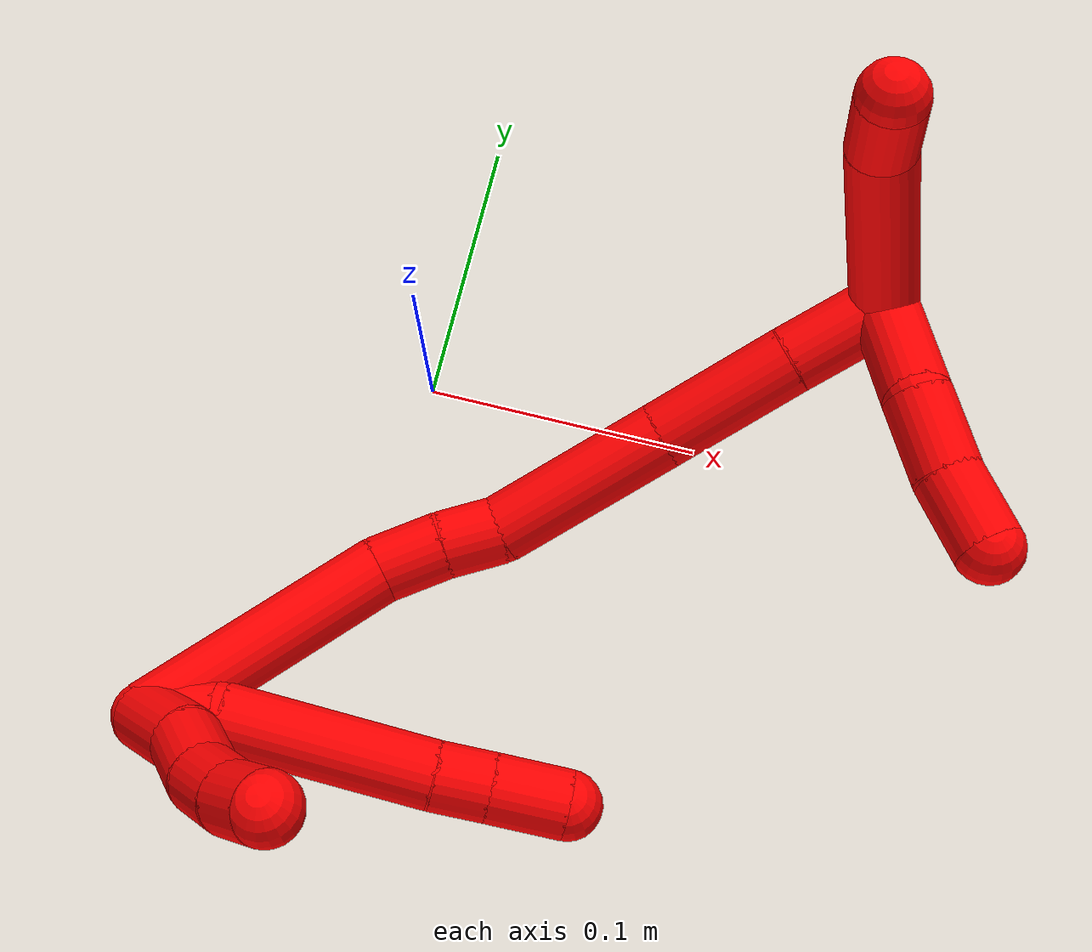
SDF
<sdf version="1.7">
 <world name="default">
  <model name="photoneo_s_sensor">
   <static>1</static>
   <pose>0 0 2 1.57079 1.57079 3.14159</pose>
   <link name="link">
    <inertial><mass>0.1</mass></inertial>
    <sensor name="sensor" type="depth">
     <update_rate>30</update_rate>
     <camera>
      <horizontal_fov>1.22</horizontal_fov>
      <image><width>1920</width><height>1200</height><format>B8G8R8</format></image>
      <clip><near>0.1</near><far>4</far></clip>
      <depth_camera><output>points</output></depth_camera>
     </camera>
     <plugin name="camera_plugin" filename="libgazebo_ros_depth_camera.so">
      <baseline>0.2</baseline>
      <alwaysOn>1</alwaysOn>
      <updateRate>0.0</updateRate>
      <cameraName>camera_ir</cameraName>
      <imageTopicName>/camera/color/image_raw</imageTopicName>
      <cameraInfoTopicName>/camera/color/camera_info</cameraInfoTopicName>
      <depthImageTopicName>/camera/depth/image_raw</depthImageTopicName>
      <depthImageCameraInfoTopicName>/camera/depth/camera_info</depthImageCameraInfoTopicName>
      <pointCloudTopicName>/camera/depth/points</pointCloudTopicName>
      <frameName>fr_optical</frameName>
      <pointCloudCutoff>0.1</pointCloudCutoff>
      <pointCloudCutoffMax>2.0</pointCloudCutoffMax>
      <distortionK1>0</distortionK1>
      <distortionK2>0</distortionK2>
      <distortionK3>0</distortionK3>
      <distortionT1>0</distortionT1>
      <distortionT2>0</distortionT2>
      <CxPrime>0</CxPrime>
      <Cx>0</Cx>
      <Cy>0</Cy>
      <focalLength>0</focalLength>
      <hackBaseline>0</hackBaseline>
     </plugin>
    </sensor>
   </link>
  </model>
  <model name="bin">
   <static>1</static>
   <link name="bottom">
    <collision name="collision-bottom">
     <pose>0 0 -0.01 0 -0 0</pose>
     <geometry><box><size>0.8 0.6 0.02</size></box></geometry>
     <surface>
      <friction><ode><mu>100</mu><mu2>100</mu2></ode></friction>
      <contact><collide_bitmask>65535</collide_bitmask></contact>
     </surface>
    </collision>
   </link>
   <link name="west_wall">
    <collision name="collision-west_wall">
     <pose>-0.41 0 0.1 0 -0 0</pose>
     <geometry><box><size>0.02 0.6 0.2</size></box></geometry>
     <surface>
      <friction><ode><mu>100</mu><mu2>100</mu2></ode></friction>
      <contact><collide_bitmask>65535</collide_bitmask></contact>
     </surface>
    </collision>
   </link>
   <link name="east_wall">
    <collision name="collision-east_wall">
     <pose>0.41 0 0.1 0 -0 0</pose>
     <geometry><box><size>0.02 0.6 0.2</size></box></geometry>
     <surface>
      <friction><ode><mu>100</mu><mu2>100</mu2></ode></friction>
      <contact><collide_bitmask>65535</collide_bitmask></contact>
     </surface>
    </collision>
   </link>
   <link name="south_wall">
    <collision name="collision-south_wall">
     <pose>0 -0.31 0.1 0 -0 0</pose>
     <geometry><box><size>0.8 0.02 0.2</size></box></geometry>
     <surface>
      <friction><ode><mu>100</mu><mu2>100</mu2></ode></friction>
      <contact><collide_bitmask>65535</collide_bitmask></contact>
     </surface>
    </collision>
   </link>
   <link name="north_wall">
    <collision name="collision-north_wall">
     <pose>0 0.31 0.1 0 -0 0</pose>
     <geometry><box><size>0.8 0.02 0.2</size></box></geometry>
     <surface>
      <friction><ode><mu>100</mu><mu2>100</mu2></ode></friction>
      <contact><collide_bitmask>65535</collide_bitmask></contact>
     </surface>
    </collision>
   </link>
  </model>
  <model name="2">
   <static>0</static>
   <link name="2">
    <collision name="collision-cylinder-e_1_2_8">
     <pose>0.012051 0.004486 0.000682 -1.42 1.21067 -1.07317</pose>
     <geometry><cylinder><radius>0.0125</radius><length>0.025755</length></cylinder></geometry>
     <surface>
      <friction><ode><mu>1.16</mu><mu2>1.16</mu2><slip1>0</slip1><slip2>0</slip2></ode></friction>
      <contact><ode><kp>1e+06</kp><kd>1</kd><max_vel>0</max_vel><min_depth>0.001</min_depth></ode></contact>
     </surface>
    </collision>
    <visual name="visual-cylinder-e_1_2_8">
     <pose>0.012051 0.004486 0.000682 -1.42 1.21067 -1.07317</pose>
     <geometry><cylinder><radius>0.0125</radius><length>0.025755</length></cylinder></geometry>
     <material><ambient>1 0 0 1</ambient></material>
    </visual>
    <collision name="collision-cylinder-e_2_8_9">
     <pose>0.060912 0.015792 -0.006415 -2.42184 1.29683 -2.21979</pose>
     <geometry><cylinder><radius>0.0125</radius><length>0.076471</length></cylinder></geometry>
     <surface>
      <friction><ode><mu>1.16</mu><mu2>1.16</mu2><slip1>0</slip1><slip2>0</slip2></ode></friction>
      <contact><ode><kp>1e+06</kp><kd>1</kd><max_vel>0</max_vel><min_depth>0.001</min_depth></ode></contact>
     </surface>
    </collision>
    <visual name="visual-cylinder-e_2_8_9">
     <pose>0.060912 0.015792 -0.006415 -2.42184 1.29683 -2.21979</pose>
     <geometry><cylinder><radius>0.0125</radius><length>0.076471</length></cylinder></geometry>
     <material><ambient>1 0 0 1</ambient></material>
    </visual>
    <collision name="collision-cylinder-e_3_9_10">
     <pose>0.107187 0.025017 -0.016407 -2.31436 1.2383 -2.03748</pose>
     <geometry><cylinder><radius>0.0125</radius><length>0.020027</length></cylinder></geometry>
     <surface>
      <friction><ode><mu>1.16</mu><mu2>1.16</mu2><slip1>0</slip1><slip2>0</slip2></ode></friction>
      <contact><ode><kp>1e+06</kp><kd>1</kd><max_vel>0</max_vel><min_depth>0.001</min_depth></ode></contact>
     </surface>
    </collision>
    <visual name="visual-cylinder-e_3_9_10">
     <pose>0.107187 0.025017 -0.016407 -2.31436 1.2383 -2.03748</pose>
     <geometry><cylinder><radius>0.0125</radius><length>0.020027</length></cylinder></geometry>
     <material><ambient>1 0 0 1</ambient></material>
    </visual>
    <collision name="collision-cylinder-e_4_10_6">
     <pose>0.129926 0.0305 -0.021228 -2.27391 1.27577 -2.02441</pose>
     <geometry><cylinder><radius>0.0125</radius><length>0.027747</length></cylinder></geometry>
     <surface>
      <friction><ode><mu>1.16</mu><mu2>1.16</mu2><slip1>0</slip1><slip2>0</slip2></ode></friction>
      <contact><ode><kp>1e+06</kp><kd>1</kd><max_vel>0</max_vel><min_depth>0.001</min_depth></ode></contact>
     </surface>
    </collision>
    <visual name="visual-cylinder-e_4_10_6">
     <pose>0.129926 0.0305 -0.021228 -2.27391 1.27577 -2.02441</pose>
     <geometry><cylinder><radius>0.0125</radius><length>0.027747</length></cylinder></geometry>
     <material><ambient>1 0 0 1</ambient></material>
    </visual>
    <collision name="collision-cylinder-e_1_2_11">
     <pose>0.012256 -0.00372 0.009479 0.373979 0.877508 0.177103</pose>
     <geometry><cylinder><radius>0.0125</radius><length>0.031869</length></cylinder></geometry>
     <surface>
      <friction><ode><mu>1.16</mu><mu2>1.16</mu2><slip1>0</slip1><slip2>0</slip2></ode></friction>
      <contact><ode><kp>1e+06</kp><kd>1</kd><max_vel>0</max_vel><min_depth>0.001</min_depth></ode></contact>
     </surface>
    </collision>
    <visual name="visual-cylinder-e_1_2_11">
     <pose>0.012256 -0.00372 0.009479 0.373979 0.877508 0.177103</pose>
     <geometry><cylinder><radius>0.0125</radius><length>0.031869</length></cylinder></geometry>
     <material><ambient>1 0 0 1</ambient></material>
    </visual>
    <collision name="collision-cylinder-e_2_11_12">
     <pose>0.033137 -0.013706 0.026289 0.70723 0.729685 0.280127</pose>
     <geometry><cylinder><radius>0.0125</radius><length>0.025874</length></cylinder></geometry>
     <surface>
      <friction><ode><mu>1.16</mu><mu2>1.16</mu2><slip1>0</slip1><slip2>0</slip2></ode></friction>
      <contact><ode><kp>1e+06</kp><kd>1</kd><max_vel>0</max_vel><min_depth>0.001</min_depth></ode></contact>
     </surface>
    </collision>
    <visual name="visual-cylinder-e_2_11_12">
     <pose>0.033137 -0.013706 0.026289 0.70723 0.729685 0.280127</pose>
     <geometry><cylinder><radius>0.0125</radius><length>0.025874</length></cylinder></geometry>
     <material><ambient>1 0 0 1</ambient></material>
    </visual>
    <collision name="collision-cylinder-e_3_12_13">
     <pose>0.049887 -0.022701 0.040401 0.382705 0.838237 0.172186</pose>
     <geometry><cylinder><radius>0.0125</radius><length>0.02186</length></cylinder></geometry>
     <surface>
      <friction><ode><mu>1.16</mu><mu2>1.16</mu2><slip1>0</slip1><slip2>0</slip2></ode></friction>
      <contact><ode><kp>1e+06</kp><kd>1</kd><max_vel>0</max_vel><min_depth>0.001</min_depth></ode></contact>
     </surface>
    </collision>
    <visual name="visual-cylinder-e_3_12_13">
     <pose>0.049887 -0.022701 0.040401 0.382705 0.838237 0.172186</pose>
     <geometry><cylinder><radius>0.0125</radius><length>0.02186</length></cylinder></geometry>
     <material><ambient>1 0 0 1</ambient></material>
    </visual>
    <collision name="collision-cylinder-e_4_13_5">
     <pose>0.065704 -0.026334 0.053818 0.135316 0.854351 0.061671</pose>
     <geometry><cylinder><radius>0.0125</radius><length>0.020396</length></cylinder></geometry>
     <surface>
      <friction><ode><mu>1.16</mu><mu2>1.16</mu2><slip1>0</slip1><slip2>0</slip2></ode></friction>
      <contact><ode><kp>1e+06</kp><kd>1</kd><max_vel>0</max_vel><min_depth>0.001</min_depth></ode></contact>
     </surface>
    </collision>
    <visual name="visual-cylinder-e_4_13_5">
     <pose>0.065704 -0.026334 0.053818 0.135316 0.854351 0.061671</pose>
     <geometry><cylinder><radius>0.0125</radius><length>0.020396</length></cylinder></geometry>
     <material><ambient>1 0 0 1</ambient></material>
    </visual>
    <collision name="collision-cylinder-e_1_2_14">
     <pose>0.024573 0.041038 -0.001605 -1.60989 0.53918 -0.559596</pose>
     <geometry><cylinder><radius>0.0125</radius><length>0.095719</length></cylinder></geometry>
     <surface>
      <friction><ode><mu>1.16</mu><mu2>1.16</mu2><slip1>0</slip1><slip2>0</slip2></ode></friction>
      <contact><ode><kp>1e+06</kp><kd>1</kd><max_vel>0</max_vel><min_depth>0.001</min_depth></ode></contact>
     </surface>
    </collision>
    <visual name="visual-cylinder-e_1_2_14">
     <pose>0.024573 0.041038 -0.001605 -1.60989 0.53918 -0.559596</pose>
     <geometry><cylinder><radius>0.0125</radius><length>0.095719</length></cylinder></geometry>
     <material><ambient>1 0 0 1</ambient></material>
    </visual>
    <collision name="collision-cylinder-e_2_14_15">
     <pose>0.058171 0.090459 -0.001843 -1.40902 0.815795 -0.704053</pose>
     <geometry><cylinder><radius>0.0125</radius><length>0.024785</length></cylinder></geometry>
     <surface>
      <friction><ode><mu>1.16</mu><mu2>1.16</mu2><slip1>0</slip1><slip2>0</slip2></ode></friction>
      <contact><ode><kp>1e+06</kp><kd>1</kd><max_vel>0</max_vel><min_depth>0.001</min_depth></ode></contact>
     </surface>
    </collision>
    <visual name="visual-cylinder-e_2_14_15">
     <pose>0.058171 0.090459 -0.001843 -1.40902 0.815795 -0.704053</pose>
     <geometry><cylinder><radius>0.0125</radius><length>0.024785</length></cylinder></geometry>
     <material><ambient>1 0 0 1</ambient></material>
    </visual>
    <collision name="collision-cylinder-e_3_15_16">
     <pose>0.075534 0.105393 -4e-05 -1.50451 0.903621 -0.852585</pose>
     <geometry><cylinder><radius>0.0125</radius><length>0.021228</length></cylinder></geometry>
     <surface>
      <friction><ode><mu>1.16</mu><mu2>1.16</mu2><slip1>0</slip1><slip2>0</slip2></ode></friction>
      <contact><ode><kp>1e+06</kp><kd>1</kd><max_vel>0</max_vel><min_depth>0.001</min_depth></ode></contact>
     </surface>
    </collision>
    <visual name="visual-cylinder-e_3_15_16">
     <pose>0.075534 0.105393 -4e-05 -1.50451 0.903621 -0.852585</pose>
     <geometry><cylinder><radius>0.0125</radius><length>0.021228</length></cylinder></geometry>
     <material><ambient>1 0 0 1</ambient></material>
    </visual>
    <collision name="collision-cylinder-e_4_16_17">
     <pose>0.105283 0.136313 0.009122 -1.22689 0.691138 -0.496488</pose>
     <geometry><cylinder><radius>0.0125</radius><length>0.067182</length></cylinder></geometry>
     <surface>
      <friction><ode><mu>1.16</mu><mu2>1.16</mu2><slip1>0</slip1><slip2>0</slip2></ode></friction>
      <contact><ode><kp>1e+06</kp><kd>1</kd><max_vel>0</max_vel><min_depth>0.001</min_depth></ode></contact>
     </surface>
    </collision>
    <visual name="visual-cylinder-e_4_16_17">
     <pose>0.105283 0.136313 0.009122 -1.22689 0.691138 -0.496488</pose>
     <geometry><cylinder><radius>0.0125</radius><length>0.067182</length></cylinder></geometry>
     <material><ambient>1 0 0 1</ambient></material>
    </visual>
    <collision name="collision-cylinder-e_5_17_18">
     <pose>0.143991 0.17886 0.026818 -1.1125 0.706381 -0.45062</pose>
     <geometry><cylinder><radius>0.0125</radius><length>0.053296</length></cylinder></geometry>
     <surface>
      <friction><ode><mu>1.16</mu><mu2>1.16</mu2><slip1>0</slip1><slip2>0</slip2></ode></friction>
      <contact><ode><kp>1e+06</kp><kd>1</kd><max_vel>0</max_vel><min_depth>0.001</min_depth></ode></contact>
     </surface>
    </collision>
    <visual name="visual-cylinder-e_5_17_18">
     <pose>0.143991 0.17886 0.026818 -1.1125 0.706381 -0.45062</pose>
     <geometry><cylinder><radius>0.0125</radius><length>0.053296</length></cylinder></geometry>
     <material><ambient>1 0 0 1</ambient></material>
    </visual>
    <collision name="collision-cylinder-e_6_18_1">
     <pose>0.17368 0.210316 0.041002 -1.19647 0.715289 -0.498807</pose>
     <geometry><cylinder><radius>0.0125</radius><length>0.037789</length></cylinder></geometry>
     <surface>
      <friction><ode><mu>1.16</mu><mu2>1.16</mu2><slip1>0</slip1><slip2>0</slip2></ode></friction>
      <contact><ode><kp>1e+06</kp><kd>1</kd><max_vel>0</max_vel><min_depth>0.001</min_depth></ode></contact>
     </surface>
    </collision>
    <visual name="visual-cylinder-e_6_18_1">
     <pose>0.17368 0.210316 0.041002 -1.19647 0.715289 -0.498807</pose>
     <geometry><cylinder><radius>0.0125</radius><length>0.037789</length></cylinder></geometry>
     <material><ambient>1 0 0 1</ambient></material>
    </visual>
    <collision name="collision-cylinder-e_1_1_19">
     <pose>0.197449 0.206383 0.049356 1.3904 0.576638 0.485032</pose>
     <geometry><cylinder><radius>0.0125</radius><length>0.041734</length></cylinder></geometry>
     <surface>
      <friction><ode><mu>1.16</mu><mu2>1.16</mu2><slip1>0</slip1><slip2>0</slip2></ode></friction>
      <contact><ode><kp>1e+06</kp><kd>1</kd><max_vel>0</max_vel><min_depth>0.001</min_depth></ode></contact>
     </surface>
    </collision>
    <visual name="visual-cylinder-e_1_1_19">
     <pose>0.197449 0.206383 0.049356 1.3904 0.576638 0.485032</pose>
     <geometry><cylinder><radius>0.0125</radius><length>0.041734</length></cylinder></geometry>
     <material><ambient>1 0 0 1</ambient></material>
    </visual>
    <collision name="collision-cylinder-e_2_19_20">
     <pose>0.218291 0.177583 0.050404 1.74919 0.676979 0.797279</pose>
     <geometry><cylinder><radius>0.0125</radius><length>0.030221</length></cylinder></geometry>
     <surface>
      <friction><ode><mu>1.16</mu><mu2>1.16</mu2><slip1>0</slip1><slip2>0</slip2></ode></friction>
      <contact><ode><kp>1e+06</kp><kd>1</kd><max_vel>0</max_vel><min_depth>0.001</min_depth></ode></contact>
     </surface>
    </collision>
    <visual name="visual-cylinder-e_2_19_20">
     <pose>0.218291 0.177583 0.050404 1.74919 0.676979 0.797279</pose>
     <geometry><cylinder><radius>0.0125</radius><length>0.030221</length></cylinder></geometry>
     <material><ambient>1 0 0 1</ambient></material>
    </visual>
    <collision name="collision-cylinder-e_3_20_4">
     <pose>0.237932 0.156408 0.047196 1.68691 0.811951 0.899755</pose>
     <geometry><cylinder><radius>0.0125</radius><length>0.028046</length></cylinder></geometry>
     <surface>
      <friction><ode><mu>1.16</mu><mu2>1.16</mu2><slip1>0</slip1><slip2>0</slip2></ode></friction>
      <contact><ode><kp>1e+06</kp><kd>1</kd><max_vel>0</max_vel><min_depth>0.001</min_depth></ode></contact>
     </surface>
    </collision>
    <visual name="visual-cylinder-e_3_20_4">
     <pose>0.237932 0.156408 0.047196 1.68691 0.811951 0.899755</pose>
     <geometry><cylinder><radius>0.0125</radius><length>0.028046</length></cylinder></geometry>
     <material><ambient>1 0 0 1</ambient></material>
    </visual>
    <collision name="collision-cylinder-e_1_1_21">
     <pose>0.179953 0.228623 0.082207 -0.138904 -0.16681 0.011631</pose>
     <geometry><cylinder><radius>0.0125</radius><length>0.073703</length></cylinder></geometry>
     <surface>
      <friction><ode><mu>1.16</mu><mu2>1.16</mu2><slip1>0</slip1><slip2>0</slip2></ode></friction>
      <contact><ode><kp>1e+06</kp><kd>1</kd><max_vel>0</max_vel><min_depth>0.001</min_depth></ode></contact>
     </surface>
    </collision>
    <visual name="visual-cylinder-e_1_1_21">
     <pose>0.179953 0.228623 0.082207 -0.138904 -0.16681 0.011631</pose>
     <geometry><cylinder><radius>0.0125</radius><length>0.073703</length></cylinder></geometry>
     <material><ambient>1 0 0 1</ambient></material>
    </visual>
    <collision name="collision-cylinder-e_2_21_3">
     <pose>0.174299 0.233478 0.131336 0.013484 0.035336 0.000238</pose>
     <geometry><cylinder><radius>0.0125</radius><length>0.026297</length></cylinder></geometry>
     <surface>
      <friction><ode><mu>1.16</mu><mu2>1.16</mu2><slip1>0</slip1><slip2>0</slip2></ode></friction>
      <contact><ode><kp>1e+06</kp><kd>1</kd><max_vel>0</max_vel><min_depth>0.001</min_depth></ode></contact>
     </surface>
    </collision>
    <visual name="visual-cylinder-e_2_21_3">
     <pose>0.174299 0.233478 0.131336 0.013484 0.035336 0.000238</pose>
     <geometry><cylinder><radius>0.0125</radius><length>0.026297</length></cylinder></geometry>
     <material><ambient>1 0 0 1</ambient></material>
    </visual>
    <collision name="collision-sphere-3">
     <pose>0.174763 0.233301 0.144475 0 -0 0</pose>
     <geometry><sphere><radius>0.0125</radius></sphere></geometry>
     <surface>
      <friction><ode><mu>1.16</mu><mu2>1.16</mu2><slip1>0</slip1><slip2>0</slip2></ode></friction>
      <contact><ode><kp>1e+06</kp><kd>1</kd><max_vel>0</max_vel><min_depth>0.001</min_depth></ode></contact>
     </surface>
    </collision>
    <visual name="visual-sphere-3">
     <pose>0.174763 0.233301 0.144475 0 -0 0</pose>
     <geometry><sphere><radius>0.0125</radius></sphere></geometry>
     <material><ambient>1 0 0 1</ambient></material>
    </visual>
    <collision name="collision-sphere-21">
     <pose>0.173834 0.233655 0.118197 0 -0 0</pose>
     <geometry><sphere><radius>0.0125</radius></sphere></geometry>
     <surface>
      <friction><ode><mu>1.16</mu><mu2>1.16</mu2><slip1>0</slip1><slip2>0</slip2></ode></friction>
      <contact><ode><kp>1e+06</kp><kd>1</kd><max_vel>0</max_vel><min_depth>0.001</min_depth></ode></contact>
     </surface>
    </collision>
    <visual name="visual-sphere-21">
     <pose>0.173834 0.233655 0.118197 0 -0 0</pose>
     <geometry><sphere><radius>0.0125</radius></sphere></geometry>
     <material><ambient>1 0 0 1</ambient></material>
    </visual>
    <collision name="collision-sphere-4">
     <pose>0.248108 0.146824 0.046079 0 -0 0</pose>
     <geometry><sphere><radius>0.0125</radius></sphere></geometry>
     <surface>
      <friction><ode><mu>1.16</mu><mu2>1.16</mu2><slip1>0</slip1><slip2>0</slip2></ode></friction>
      <contact><ode><kp>1e+06</kp><kd>1</kd><max_vel>0</max_vel><min_depth>0.001</min_depth></ode></contact>
     </surface>
    </collision>
    <visual name="visual-sphere-4">
     <pose>0.248108 0.146824 0.046079 0 -0 0</pose>
     <geometry><sphere><radius>0.0125</radius></sphere></geometry>
     <material><ambient>1 0 0 1</ambient></material>
    </visual>
    <collision name="collision-sphere-20">
     <pose>0.227757 0.165992 0.048314 0 -0 0</pose>
     <geometry><sphere><radius>0.0125</radius></sphere></geometry>
     <surface>
      <friction><ode><mu>1.16</mu><mu2>1.16</mu2><slip1>0</slip1><slip2>0</slip2></ode></friction>
      <contact><ode><kp>1e+06</kp><kd>1</kd><max_vel>0</max_vel><min_depth>0.001</min_depth></ode></contact>
     </surface>
    </collision>
    <visual name="visual-sphere-20">
     <pose>0.227757 0.165992 0.048314 0 -0 0</pose>
     <geometry><sphere><radius>0.0125</radius></sphere></geometry>
     <material><ambient>1 0 0 1</ambient></material>
    </visual>
    <collision name="collision-sphere-11">
     <pose>0.024512 -0.00744 0.018959 0 -0 0</pose>
     <geometry><sphere><radius>0.0125</radius></sphere></geometry>
     <surface>
      <friction><ode><mu>1.16</mu><mu2>1.16</mu2><slip1>0</slip1><slip2>0</slip2></ode></friction>
      <contact><ode><kp>1e+06</kp><kd>1</kd><max_vel>0</max_vel><min_depth>0.001</min_depth></ode></contact>
     </surface>
    </collision>
    <visual name="visual-sphere-11">
     <pose>0.024512 -0.00744 0.018959 0 -0 0</pose>
     <geometry><sphere><radius>0.0125</radius></sphere></geometry>
     <material><ambient>1 0 0 1</ambient></material>
    </visual>
    <collision name="collision-sphere-6">
     <pose>0.1432 0.033577 -0.023836 0 -0 0</pose>
     <geometry><sphere><radius>0.0125</radius></sphere></geometry>
     <surface>
      <friction><ode><mu>1.16</mu><mu2>1.16</mu2><slip1>0</slip1><slip2>0</slip2></ode></friction>
      <contact><ode><kp>1e+06</kp><kd>1</kd><max_vel>0</max_vel><min_depth>0.001</min_depth></ode></contact>
     </surface>
    </collision>
    <visual name="visual-sphere-6">
     <pose>0.1432 0.033577 -0.023836 0 -0 0</pose>
     <geometry><sphere><radius>0.0125</radius></sphere></geometry>
     <material><ambient>1 0 0 1</ambient></material>
    </visual>
    <collision name="collision-sphere-10">
     <pose>0.116652 0.027423 -0.018619 0 -0 0</pose>
     <geometry><sphere><radius>0.0125</radius></sphere></geometry>
     <surface>
      <friction><ode><mu>1.16</mu><mu2>1.16</mu2><slip1>0</slip1><slip2>0</slip2></ode></friction>
      <contact><ode><kp>1e+06</kp><kd>1</kd><max_vel>0</max_vel><min_depth>0.001</min_depth></ode></contact>
     </surface>
    </collision>
    <visual name="visual-sphere-10">
     <pose>0.116652 0.027423 -0.018619 0 -0 0</pose>
     <geometry><sphere><radius>0.0125</radius></sphere></geometry>
     <material><ambient>1 0 0 1</ambient></material>
    </visual>
    <collision name="collision-sphere-9">
     <pose>0.097722 0.022611 -0.014194 0 -0 0</pose>
     <geometry><sphere><radius>0.0125</radius></sphere></geometry>
     <surface>
      <friction><ode><mu>1.16</mu><mu2>1.16</mu2><slip1>0</slip1><slip2>0</slip2></ode></friction>
      <contact><ode><kp>1e+06</kp><kd>1</kd><max_vel>0</max_vel><min_depth>0.001</min_depth></ode></contact>
     </surface>
    </collision>
    <visual name="visual-sphere-9">
     <pose>0.097722 0.022611 -0.014194 0 -0 0</pose>
     <geometry><sphere><radius>0.0125</radius></sphere></geometry>
     <material><ambient>1 0 0 1</ambient></material>
    </visual>
    <collision name="collision-sphere-2">
     <geometry><sphere><radius>0.0125</radius></sphere></geometry>
     <surface>
      <friction><ode><mu>1.16</mu><mu2>1.16</mu2><slip1>0</slip1><slip2>0</slip2></ode></friction>
      <contact><ode><kp>1e+06</kp><kd>1</kd><max_vel>0</max_vel><min_depth>0.001</min_depth></ode></contact>
     </surface>
    </collision>
    <visual name="visual-sphere-2">
     <geometry><sphere><radius>0.0125</radius></sphere></geometry>
     <material><ambient>1 0 0 1</ambient></material>
    </visual>
    <collision name="collision-sphere-19">
     <pose>0.208825 0.189174 0.052494 0 -0 0</pose>
     <geometry><sphere><radius>0.0125</radius></sphere></geometry>
     <surface>
      <friction><ode><mu>1.16</mu><mu2>1.16</mu2><slip1>0</slip1><slip2>0</slip2></ode></friction>
      <contact><ode><kp>1e+06</kp><kd>1</kd><max_vel>0</max_vel><min_depth>0.001</min_depth></ode></contact>
     </surface>
    </collision>
    <visual name="visual-sphere-19">
     <pose>0.208825 0.189174 0.052494 0 -0 0</pose>
     <geometry><sphere><radius>0.0125</radius></sphere></geometry>
     <material><ambient>1 0 0 1</ambient></material>
    </visual>
    <collision name="collision-sphere-8">
     <pose>0.024103 0.008973 0.001363 0 -0 0</pose>
     <geometry><sphere><radius>0.0125</radius></sphere></geometry>
     <surface>
      <friction><ode><mu>1.16</mu><mu2>1.16</mu2><slip1>0</slip1><slip2>0</slip2></ode></friction>
      <contact><ode><kp>1e+06</kp><kd>1</kd><max_vel>0</max_vel><min_depth>0.001</min_depth></ode></contact>
     </surface>
    </collision>
    <visual name="visual-sphere-8">
     <pose>0.024103 0.008973 0.001363 0 -0 0</pose>
     <geometry><sphere><radius>0.0125</radius></sphere></geometry>
     <material><ambient>1 0 0 1</ambient></material>
    </visual>
    <collision name="collision-sphere-12">
     <pose>0.041761 -0.019971 0.03362 0 -0 0</pose>
     <geometry><sphere><radius>0.0125</radius></sphere></geometry>
     <surface>
      <friction><ode><mu>1.16</mu><mu2>1.16</mu2><slip1>0</slip1><slip2>0</slip2></ode></friction>
      <contact><ode><kp>1e+06</kp><kd>1</kd><max_vel>0</max_vel><min_depth>0.001</min_depth></ode></contact>
     </surface>
    </collision>
    <visual name="visual-sphere-12">
     <pose>0.041761 -0.019971 0.03362 0 -0 0</pose>
     <geometry><sphere><radius>0.0125</radius></sphere></geometry>
     <material><ambient>1 0 0 1</ambient></material>
    </visual>
    <collision name="collision-sphere-13">
     <pose>0.058013 -0.025431 0.047182 0 -0 0</pose>
     <geometry><sphere><radius>0.0125</radius></sphere></geometry>
     <surface>
      <friction><ode><mu>1.16</mu><mu2>1.16</mu2><slip1>0</slip1><slip2>0</slip2></ode></friction>
      <contact><ode><kp>1e+06</kp><kd>1</kd><max_vel>0</max_vel><min_depth>0.001</min_depth></ode></contact>
     </surface>
    </collision>
    <visual name="visual-sphere-13">
     <pose>0.058013 -0.025431 0.047182 0 -0 0</pose>
     <geometry><sphere><radius>0.0125</radius></sphere></geometry>
     <material><ambient>1 0 0 1</ambient></material>
    </visual>
    <collision name="collision-sphere-5">
     <pose>0.073395 -0.027238 0.060454 0 -0 0</pose>
     <geometry><sphere><radius>0.0125</radius></sphere></geometry>
     <surface>
      <friction><ode><mu>1.16</mu><mu2>1.16</mu2><slip1>0</slip1><slip2>0</slip2></ode></friction>
      <contact><ode><kp>1e+06</kp><kd>1</kd><max_vel>0</max_vel><min_depth>0.001</min_depth></ode></contact>
     </surface>
    </collision>
    <visual name="visual-sphere-5">
     <pose>0.073395 -0.027238 0.060454 0 -0 0</pose>
     <geometry><sphere><radius>0.0125</radius></sphere></geometry>
     <material><ambient>1 0 0 1</ambient></material>
    </visual>
    <collision name="collision-sphere-14">
     <pose>0.049145 0.082077 -0.00321 0 -0 0</pose>
     <geometry><sphere><radius>0.0125</radius></sphere></geometry>
     <surface>
      <friction><ode><mu>1.16</mu><mu2>1.16</mu2><slip1>0</slip1><slip2>0</slip2></ode></friction>
      <contact><ode><kp>1e+06</kp><kd>1</kd><max_vel>0</max_vel><min_depth>0.001</min_depth></ode></contact>
     </surface>
    </collision>
    <visual name="visual-sphere-14">
     <pose>0.049145 0.082077 -0.00321 0 -0 0</pose>
     <geometry><sphere><radius>0.0125</radius></sphere></geometry>
     <material><ambient>1 0 0 1</ambient></material>
    </visual>
    <collision name="collision-sphere-15">
     <pose>0.067196 0.09884 -0.000475 0 -0 0</pose>
     <geometry><sphere><radius>0.0125</radius></sphere></geometry>
     <surface>
      <friction><ode><mu>1.16</mu><mu2>1.16</mu2><slip1>0</slip1><slip2>0</slip2></ode></friction>
      <contact><ode><kp>1e+06</kp><kd>1</kd><max_vel>0</max_vel><min_depth>0.001</min_depth></ode></contact>
     </surface>
    </collision>
    <visual name="visual-sphere-15">
     <pose>0.067196 0.09884 -0.000475 0 -0 0</pose>
     <geometry><sphere><radius>0.0125</radius></sphere></geometry>
     <material><ambient>1 0 0 1</ambient></material>
    </visual>
    <collision name="collision-sphere-16">
     <pose>0.083872 0.111946 0.000395 0 -0 0</pose>
     <geometry><sphere><radius>0.0125</radius></sphere></geometry>
     <surface>
      <friction><ode><mu>1.16</mu><mu2>1.16</mu2><slip1>0</slip1><slip2>0</slip2></ode></friction>
      <contact><ode><kp>1e+06</kp><kd>1</kd><max_vel>0</max_vel><min_depth>0.001</min_depth></ode></contact>
     </surface>
    </collision>
    <visual name="visual-sphere-16">
     <pose>0.083872 0.111946 0.000395 0 -0 0</pose>
     <geometry><sphere><radius>0.0125</radius></sphere></geometry>
     <material><ambient>1 0 0 1</ambient></material>
    </visual>
    <collision name="collision-sphere-17">
     <pose>0.126695 0.160681 0.017849 0 -0 0</pose>
     <geometry><sphere><radius>0.0125</radius></sphere></geometry>
     <surface>
      <friction><ode><mu>1.16</mu><mu2>1.16</mu2><slip1>0</slip1><slip2>0</slip2></ode></friction>
      <contact><ode><kp>1e+06</kp><kd>1</kd><max_vel>0</max_vel><min_depth>0.001</min_depth></ode></contact>
     </surface>
    </collision>
    <visual name="visual-sphere-17">
     <pose>0.126695 0.160681 0.017849 0 -0 0</pose>
     <geometry><sphere><radius>0.0125</radius></sphere></geometry>
     <material><ambient>1 0 0 1</ambient></material>
    </visual>
    <collision name="collision-sphere-18">
     <pose>0.161288 0.19704 0.035786 0 -0 0</pose>
     <geometry><sphere><radius>0.0125</radius></sphere></geometry>
     <surface>
      <friction><ode><mu>1.16</mu><mu2>1.16</mu2><slip1>0</slip1><slip2>0</slip2></ode></friction>
      <contact><ode><kp>1e+06</kp><kd>1</kd><max_vel>0</max_vel><min_depth>0.001</min_depth></ode></contact>
     </surface>
    </collision>
    <visual name="visual-sphere-18">
     <pose>0.161288 0.19704 0.035786 0 -0 0</pose>
     <geometry><sphere><radius>0.0125</radius></sphere></geometry>
     <material><ambient>1 0 0 1</ambient></material>
    </visual>
    <collision name="collision-sphere-1">
     <pose>0.186072 0.223592 0.046217 0 -0 0</pose>
     <geometry><sphere><radius>0.0125</radius></sphere></geometry>
     <surface>
      <friction><ode><mu>1.16</mu><mu2>1.16</mu2><slip1>0</slip1><slip2>0</slip2></ode></friction>
      <contact><ode><kp>1e+06</kp><kd>1</kd><max_vel>0</max_vel><min_depth>0.001</min_depth></ode></contact>
     </surface>
    </collision>
    <visual name="visual-sphere-1">
     <pose>0.186072 0.223592 0.046217 0 -0 0</pose>
     <geometry><sphere><radius>0.0125</radius></sphere></geometry>
     <material><ambient>1 0 0 1</ambient></material>
    </visual>
    <inertial>
     <pose>0.107285 0.103421 0.025844 0 -0 0</pose>
     <mass>0.75</mass>
     <inertia>
      <ixx>0.000116</ixx>
      <ixy>0</ixy>
      <ixz>0</ixz>
      <iyy>0.000104</iyy>
      <iyz>0</iyz>
      <izz>-0.000217</izz>
     </inertia>
    </inertial>
   </link>
   <pose>-0.06266 -0.144895 0.023328 -0.184731 -0.127485 -0.15347</pose>
  </model>
 </world>
</sdf>
